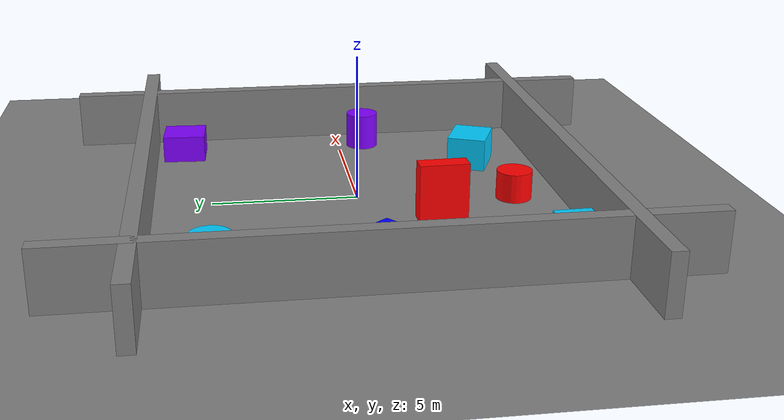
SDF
<?xml version="1.0" ?>
<sdf version="1.8">
  <world name="random_world">
    <physics name="1ms" type="ignored">
      <max_step_size>0.002</max_step_size>
      <real_time_update_rate>200</real_time_update_rate>
    </physics>

    <plugin
      filename="ignition-gazebo-physics-system"
      name="ignition::gazebo::systems::Physics">
      <include_entity_names>true</include_entity_names>
    </plugin>
    <plugin
      filename="ignition-gazebo-sensors-system"
      name="ignition::gazebo::systems::Sensors">
      <render_engine>ogre2</render_engine>
    </plugin>
    <plugin
      filename="ignition-gazebo-user-commands-system"
      name="ignition::gazebo::systems::UserCommands"> <!-- do no delete -->
    </plugin>
    <plugin
      filename="libignition-gazebo-contact-system.so"
      name="ignition::gazebo::systems::Contact">
      <topic>/world/random_world/physics/contacts</topic>
    </plugin>
    <plugin
      filename="ignition-gazebo-scene-broadcaster-system"
      name="ignition::gazebo::systems::SceneBroadcaster">
    </plugin>

    <light name='sun' type='directional'>
      <pose>0 0 10 0 -0 0</pose>
      <cast_shadows>true</cast_shadows>
      <intensity>1</intensity>
      <direction>-0.5 0.5 -1</direction>
      <diffuse>1 1 1 1</diffuse>
      <specular>0.1 0.1 0.1 1</specular>
      <attenuation>
        <range>10</range>
        <linear>1</linear>
        <constant>1</constant>
        <quadratic>0</quadratic>
      </attenuation>
    </light>

    <model name='ground_plane'>
      <static>true</static>
      <link name='link'>
        <collision name='collision'>
          <geometry>
            <plane>
              <normal>0 0 1</normal>
              <size>50 50</size>
            </plane>
          </geometry>
          <surface><friction><ode/></friction></surface>
        </collision>
        <visual name='visual'>
          <geometry>
            <plane>
              <normal>0 0 1</normal>
              <size>50 50</size>
            </plane>
          </geometry>
          <material>
            <ambient>0.5 0.5 0.5 1</ambient>
            <diffuse>0.5 0.5 0.5 1</diffuse>
          </material>
        </visual>
      </link>
    </model>

    <model name="north_wall">
      <pose>0 7.25 1.0 0 0 0</pose>
      <link name="link">
        <collision name="collision">
          <geometry>
            <box><size>20 0.5 2.0</size></box>
          </geometry>
        </collision>
        <visual name="visual">
          <geometry>
            <box><size>20 0.5 2.0</size></box>
          </geometry>
          <material>
            <ambient>0.5 0.5 0.5 1</ambient>
            <diffuse>0.5 0.5 0.5 1</diffuse>
          </material>
        </visual>
      </link>
      <static>true</static>
    </model>

    <model name="south_wall">
      <pose>0 -7.25 1.0 0 0 0</pose>
      <link name="link">
        <collision name="collision">
          <geometry>
            <box><size>20 0.5 2.0</size></box>
          </geometry>
        </collision>
        <visual name="visual">
          <geometry>
            <box><size>20 0.5 2.0</size></box>
          </geometry>
          <material>
            <ambient>0.5 0.5 0.5 1</ambient>
            <diffuse>0.5 0.5 0.5 1</diffuse>
          </material>
        </visual>
      </link>
      <static>true</static>
    </model>

    <model name="east_wall">
      <pose>7.25 0 1.0 0 0 0</pose>
      <link name="link">
        <collision name="collision">
          <geometry>
            <box><size>0.5 20 2.0</size></box>
          </geometry>
        </collision>
        <visual name="visual">
          <geometry>
            <box><size>0.5 20 2.0</size></box>
          </geometry>
          <material>
            <ambient>0.5 0.5 0.5 1</ambient>
            <diffuse>0.5 0.5 0.5 1</diffuse>
          </material>
        </visual>
      </link>
      <static>true</static>
    </model>

    <model name="west_wall">
      <pose>-7.25 0 1.0 0 0 0</pose>
      <link name="link">
        <collision name="collision">
          <geometry>
            <box><size>0.5 20 2.0</size></box>
          </geometry>
        </collision>
        <visual name="visual">
          <geometry>
            <box><size>0.5 20 2.0</size></box>
          </geometry>
          <material>
            <ambient>0.5 0.5 0.5 1</ambient>
            <diffuse>0.5 0.5 0.5 1</diffuse>
          </material>
        </visual>
      </link>
      <static>true</static>
    </model>

    <model name="box0">
      <pose>5.248576873024862 5.9505240492909115 0.48370104482825105 0 0 4.660540346038107</pose>
      <link name="link">
        <collision name="collision">
          <geometry>
            <box><size>1.5287272438831696 1.4691957529245177 0.9674020896565021</size></box>
          </geometry>
        </collision>
        <visual name="visual">
          <geometry>
            <box><size>1.5287272438831696 1.4691957529245177 0.9674020896565021</size></box>
          </geometry>
          <material>
            <ambient>0.5 0.0 1.0 1</ambient>
            <diffuse>0.5 0.0 1.0 1</diffuse>
          </material>
        </visual>
      </link>
      <static>true</static>
    </model>

    <model name="box1">
      <pose>3.0207845789689003 -4.687882537894261 0.5865462534026221 0 0 2.735491286367606</pose>
      <link name="link">
        <collision name="collision">
          <geometry>
            <box><size>1.701355788842928 1.392531687159638 1.1730925068052442</size></box>
          </geometry>
        </collision>
        <visual name="visual">
          <geometry>
            <box><size>1.701355788842928 1.392531687159638 1.1730925068052442</size></box>
          </geometry>
          <material>
            <ambient>0.0 0.8 1.0 1</ambient>
            <diffuse>0.0 0.8 1.0 1</diffuse>
          </material>
        </visual>
      </link>
      <static>true</static>
    </model>

    <model name="box2">
      <pose>-4.804440042212456 -0.5420923593699234 0.3640300178213991 0 0 3.8160547961552758</pose>
      <link name="link">
        <collision name="collision">
          <geometry>
            <box><size>1.867122917212609 1.215847667382786 0.7280600356427982</size></box>
          </geometry>
        </collision>
        <visual name="visual">
          <geometry>
            <box><size>1.867122917212609 1.215847667382786 0.7280600356427982</size></box>
          </geometry>
          <material>
            <ambient>0.0 0.0 1.0 1</ambient>
            <diffuse>0.0 0.0 1.0 1</diffuse>
          </material>
        </visual>
      </link>
      <static>true</static>
    </model>

    <model name="box3">
      <pose>-2.193515675220386 -2.535147255847805 0.9769363167746856 0 0 0.022444804336119385</pose>
      <link name="link">
        <collision name="collision">
          <geometry>
            <box><size>0.6235113134794312 1.6598333152500246 1.9538726335493712</size></box>
          </geometry>
        </collision>
        <visual name="visual">
          <geometry>
            <box><size>0.6235113134794312 1.6598333152500246 1.9538726335493712</size></box>
          </geometry>
          <material>
            <ambient>1.0 0.0 0.0 1</ambient>
            <diffuse>1.0 0.0 0.0 1</diffuse>
          </material>
        </visual>
      </link>
      <static>true</static>
    </model>

    <model name="box4">
      <pose>-5.195069681413778 -6.159846371861176 0.5398368434386879 0 0 0.03456873132233875</pose>
      <link name="link">
        <collision name="collision">
          <geometry>
            <box><size>1.1834503139966892 1.2585419352963783 1.0796736868773757</size></box>
          </geometry>
        </collision>
        <visual name="visual">
          <geometry>
            <box><size>1.1834503139966892 1.2585419352963783 1.0796736868773757</size></box>
          </geometry>
          <material>
            <ambient>0.0 0.8 1.0 1</ambient>
            <diffuse>0.0 0.8 1.0 1</diffuse>
          </material>
        </visual>
      </link>
      <static>true</static>
    </model>

    <model name="cylinder0">
      <pose>-0.7041629120489148 -5.381875082138576 0.5048487342424286 0 0 1.4353778682438265</pose>
      <link name="link">
        <collision name="collision">
          <geometry>
            <cylinder><radius>0.6167617204332714</radius><length>1.0096974684848572</length></cylinder>
          </geometry>
        </collision>
        <visual name="visual">
          <geometry>
            <cylinder><radius>0.6167617204332714</radius><length>1.0096974684848572</length></cylinder>
          </geometry>
          <material>
            <ambient>1.0 0.0 0.0 1</ambient>
            <diffuse>1.0 0.0 0.0 1</diffuse>
          </material>
        </visual>
      </link>
      <static>true</static>
    </model>

    <model name="cylinder1">
      <pose>-3.9869885800045846 5.090533276425646 0.3124627388397285 0 0 4.632199460703319</pose>
      <link name="link">
        <collision name="collision">
          <geometry>
            <cylinder><radius>0.6977491092247838</radius><length>0.624925477679457</length></cylinder>
          </geometry>
        </collision>
        <visual name="visual">
          <geometry>
            <cylinder><radius>0.6977491092247838</radius><length>0.624925477679457</length></cylinder>
          </geometry>
          <material>
            <ambient>0.0 0.8 1.0 1</ambient>
            <diffuse>0.0 0.8 1.0 1</diffuse>
          </material>
        </visual>
      </link>
      <static>true</static>
    </model>

    <model name="cylinder2">
      <pose>5.642239991004098 -0.9410717389525569 0.6563146004428563 0 0 0.47588812650311035</pose>
      <link name="link">
        <collision name="collision">
          <geometry>
            <cylinder><radius>0.5958169291688589</radius><length>1.3126292008857126</length></cylinder>
          </geometry>
        </collision>
        <visual name="visual">
          <geometry>
            <cylinder><radius>0.5958169291688589</radius><length>1.3126292008857126</length></cylinder>
          </geometry>
          <material>
            <ambient>0.5 0.0 1.0 1</ambient>
            <diffuse>0.5 0.0 1.0 1</diffuse>
          </material>
        </visual>
      </link>
      <static>true</static>
    </model>

  </world>
</sdf>
